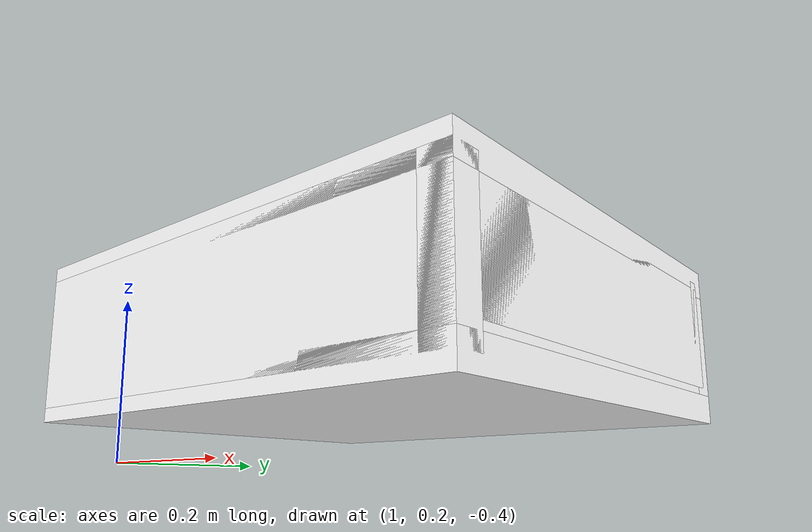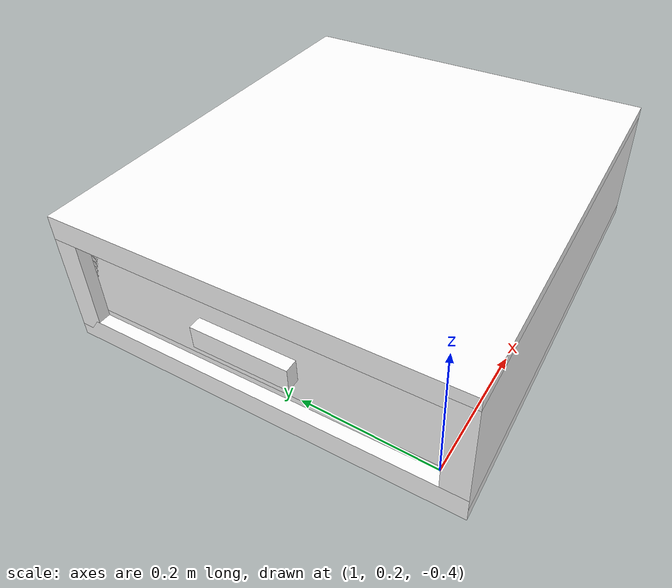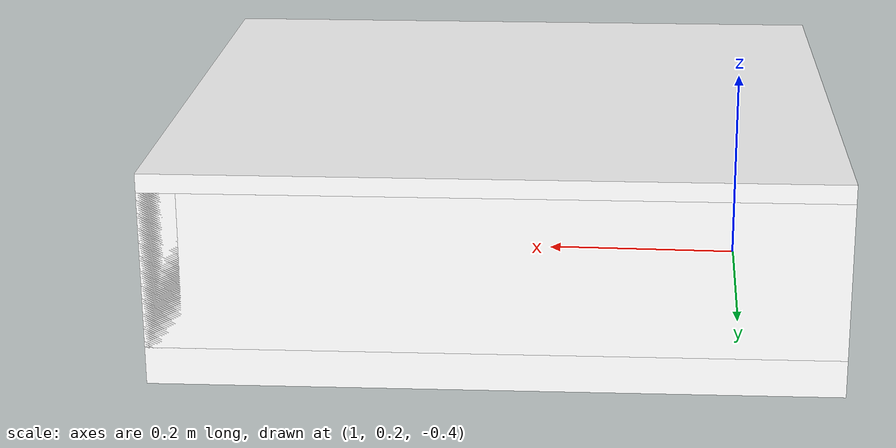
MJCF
<mujoco model="drawer">
        <compiler angle="radian" eulerseq='zxy' />
        <option gravity = "0 0 0" />
        <option>
            <flag contact = "disable"/>
        </option>
        <statistic	extent="1.0" center="0.0 0.0 0.0"/>
        <visual>
            <map fogstart="3" fogend="5" force="0.1" znear=" 0.100000 " zfar=" 12.000000 "/>
        </visual>
        <size njmax="500" nconmax="100" />
        <actuator>
            <velocity joint="drawerJ" name="viva_revolution" kv='10'></velocity>
        </actuator>
        <asset>
            <texture builtin="flat" name="objtex" height="32" width="32" rgb1="1 1 1" type="cube"></texture>
            <texture builtin="flat" name="handletex" height="32" width="32" rgb1="1 1 1" type="cube"></texture>
            <material name="geomObj" shininess="0.03" specular="0.75" texture="objtex"></material>
            <material name="geomHandle" shininess="0.03" specular="0.75" texture="handletex"></material>
        </asset>
        <worldbody>
            <body name="cabinet_bottom" pos= " 1.228207 0.420735 -0.334569 "  quat= " -0.014712 0.000000 0.000000 0.999892" >
                <inertial pos="0 0 0" mass="1" diaginertia="1 1 1" />
                <geom size= " 0.304619 0.274086 0.017022 "  type="box" material="geomObj" name="b"/>
                <body name="cabinet_left" pos= " 0.000000 -0.257064 0.079563 " >
                    <inertial pos="0 0 0" mass="1" diaginertia="1 1 1" />
                    <geom size= " 0.304619 0.017022 0.079563 "  type="box" material="geomObj" name="c" />
                </body>
                <body name="cabinet_right" pos= " 0.000000 0.257064 0.079563 " >
                    <inertial pos="0 0 0" mass="1" diaginertia="1 1 1" />
                    <geom size= " 0.304619 0.017022 0.079563 "  type="box" material="geomObj" name="d" />
                </body>
                <body name="cabinet_top" pos= " 0.000000 0.000000 0.159126 " >
                    <inertial pos="0 0 0" mass="1" diaginertia="1 1 1" />
                    <geom size= " 0.304619 0.274086 0.017022 "  type="box" material="geomObj" name="e"/>
                </body>
                <body name="cabinet_back" pos= " -0.287597 0.000000 0.079563 "  >
                    <inertial pos="0 0 0" mass="1" diaginertia="1 1 1" />
                    <geom size= " 0.017022 0.274086 0.079563 "  type="box" material="geomObj" name="f" />
                </body>
                <body name="drawer" pos= " 0.000000 0.000000 0.008511 "  >
                    <geom size= " 0.287597 0.257064 0.017022 "  type="box" material="geomObj" name="ddddfadfadsfac" />
                    <joint name="drawerJ" pos="0 0 0" axis="1 0 0" type="slide" limited="true" range= "0  0.4569287449121475 "  />
                    <inertial pos="0 0 0" mass="1" diaginertia="1 1 1" />
                    <body name="drawer_left" pos= " 0.000000 -0.240042 0.079563 " >
                        <inertial pos="0 0 0" mass="1" diaginertia="1 1 1" />
                        <geom size= " 0.287597 0.017022 0.062541 "  type="box" material="geomObj" name="ddc" />
                    </body>
                    <body name="drawer_right" pos= " 0.000000 0.240042 0.079563 " >
                        <inertial pos="0 0 0" mass="1" diaginertia="1 1 1" />
                        <geom size= " 0.287597 0.017022 0.062541 "  type="box" material="geomObj" name="dddd" />
                    </body>
                    <body name="drawer_front" pos= " 0.270575 0.000000 0.079563 " >
                        <inertial pos="0 0 0" mass="1" diaginertia="1 1 1" />
                        <geom size= " 0.017022 0.257064 0.062541 "  type="box" material="geomObj" name="eeeee"/>
                    </body>
                    <body name="drawer_back" pos= " -0.287597 0.000000 0.079563 "  >
                        <inertial pos="0 0 0" mass="1" diaginertia="1 1 1" />
                        <geom size= " 0.017022 0.257064 0.062541 "  type="box" material="geomObj" name="fffff" />
                    </body>
                    <body name="knob" pos= " 0.304619 0.000000 0.079563 " >
                        <inertial pos="0 0 0" mass="0.1" diaginertia="0.1 0.1 0.1" />
                        <geom size= " 0.008462 0.065359 0.015764 "  pos="0 0 0" type="box" material="geomHandle" name="handle"/>
                    </body>
                </body>
            </body>
            <body name="external_camera_body_0" pos="0.0 0 0.00">
                <camera euler="-1.57 1.57 0.0" fovy=" 54.280851 " name="external_camera_0" pos="0.0 0 0"></camera>
                <inertial pos= " 0.00 0.0 0.000000 " mass="1" diaginertia="1 1 1" />
                <joint name="cam_j" pos="0.0 0 0" axis = "1 0 0" type="free" />
            </body>
        </worldbody>
    </mujoco>
